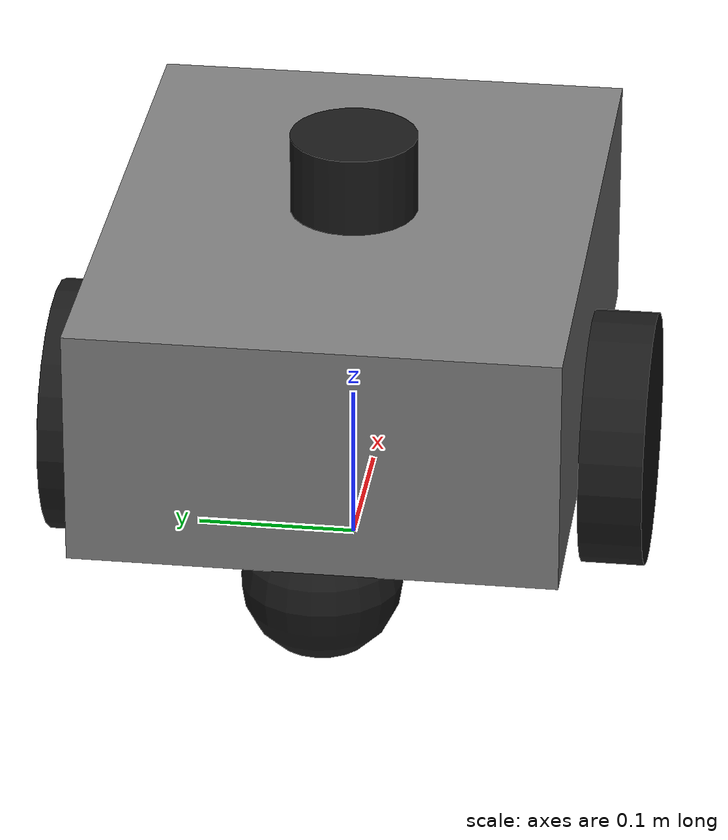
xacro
<?xml version="1.0"?>
<robot name="mybot" xmlns:xacro="http://www.ros.org/wiki/xacro">

  <xacro:property name="base_length"      value="0.4"/>
  <xacro:property name="base_width"       value="0.3"/>
  <xacro:property name="base_height"      value="0.15"/>

  <xacro:property name="wheel_radius"     value="0.08"/>
  <xacro:property name="wheel_width"      value="0.04"/>
  <xacro:property name="wheel_separation" value="0.34"/>

  <!-- axle at base bottom face -->
  <xacro:property name="wheel_offset_z"   value="${-base_height/2}"/>

  <!-- caster: same radius as wheel so contact plane is identical -->
  <xacro:property name="caster_radius"    value="0.05"/>
  <xacro:property name="caster_joint_z"  value="${caster_radius - wheel_radius - base_height/2}"/>

  <!-- ============================================================ MATERIALS -->
  <material name="grey"> <color rgba="0.5 0.5 0.5 1"/> </material>
  <material name="black"><color rgba="0.1 0.1 0.1 1"/> </material>

  <!-- ============================================================ BASE -->
  <link name="base_footprint"/>

  <link name="base_link">
    <visual>
      <geometry><box size="${base_length} ${base_width} ${base_height}"/></geometry>
      <material name="grey"/>
    </visual>
    <collision>
      <geometry><box size="${base_length} ${base_width} ${base_height}"/></geometry>
    </collision>
    <inertial>
      <mass value="5.0"/>
      <inertia ixx="0.0578" ixy="0" ixz="0"
               iyy="0.0911" iyz="0"
               izz="0.1156"/>
    </inertial>
  </link>

  <joint name="base_joint" type="fixed">
    <parent link="base_footprint"/>
    <child  link="base_link"/>
    <origin xyz="0 0 ${wheel_radius - wheel_offset_z}" rpy="0 0 0"/>
  </joint>

  <!-- ============================================================ WHEELS -->
  <xacro:macro name="wheel" params="prefix reflect">
    <link name="${prefix}_wheel_link">
      <visual>
        <geometry><cylinder radius="${wheel_radius}" length="${wheel_width}"/></geometry>
        <origin xyz="0 0 0" rpy="1.5708 0 0"/>
        <material name="black"/>
      </visual>
      <collision>
        <geometry><cylinder radius="${wheel_radius}" length="${wheel_width}"/></geometry>
        <origin xyz="0 0 0" rpy="1.5708 0 0"/>
      </collision>
      <inertial>
        <mass value="0.5"/>
        <inertia ixx="0.000867" ixy="0" ixz="0"
                 iyy="0.00016" iyz="0"
                 izz="0.000867"/>
      </inertial>
    </link>

    <joint name="${prefix}_wheel_joint" type="continuous">
      <parent link="base_link"/>
      <child  link="${prefix}_wheel_link"/>
      <origin xyz="0 ${reflect * wheel_separation/2} ${wheel_offset_z}" rpy="0 0 0"/>
      <axis xyz="0 1 0"/>
      <dynamics damping="0.01" friction="0.0"/>
      <limit effort="2.0" velocity="10.0"/>
    </joint>
  </xacro:macro>

  <xacro:wheel prefix="left"  reflect="1"/>
  <xacro:wheel prefix="right" reflect="-1"/>

  <!-- ============================================================ CASTERS -->
  <xacro:macro name="caster" params="prefix x_offset y_offset">
    <link name="caster_${prefix}_link">
      <visual>
        <geometry><sphere radius="${caster_radius}"/></geometry>
        <material name="black"/>
      </visual>
      <collision>
        <geometry><sphere radius="${caster_radius}"/></geometry>
      </collision>
      <inertial>
        <mass value="0.1"/>
        <inertia ixx="0.0001" ixy="0" ixz="0"
                 iyy="0.0001" iyz="0"
                 izz="0.0001"/>
      </inertial>
    </link>

    <joint name="caster_${prefix}_joint" type="fixed">
      <parent link="base_link"/>
      <child  link="caster_${prefix}_link"/>
      <origin xyz="${x_offset} ${y_offset} ${caster_joint_z}" rpy="0 0 0"/>
    </joint>

    <gazebo reference="caster_${prefix}_link">
      <material>Gazebo/Black</material>
      <mu1>0.0</mu1>
      <mu2>0.0</mu2>
      <kp>100000.0</kp>
      <kd>10.0</kd>
      <minDepth>0.001</minDepth>
      <maxVel>0.1</maxVel>
    </gazebo>
  </xacro:macro>

  <xacro:caster prefix="front" x_offset="${ base_length/2 - 0.05}" y_offset="0.0"/>
  <xacro:caster prefix="back"  x_offset="${-base_length/2 + 0.05}" y_offset="0.0"/>

  <!-- ============================================================ ROS2_CONTROL -->
  <ros2_control name="GazeboSystem" type="system">
    <hardware>
      <plugin>gazebo_ros2_control/GazeboSystem</plugin>
    </hardware>
    <joint name="left_wheel_joint">
      <command_interface name="velocity">
        <param name="min">-10</param>
        <param name="max">10</param>
      </command_interface>
      <state_interface name="position"/>
      <state_interface name="velocity"/>
    </joint>
    <joint name="right_wheel_joint">
      <command_interface name="velocity">
        <param name="min">-10</param>
        <param name="max">10</param>
      </command_interface>
      <state_interface name="position"/>
      <state_interface name="velocity"/>
    </joint>
  </ros2_control>

  <!-- ============================================================ GAZEBO PLUGINS -->
  <gazebo>
    <plugin name="gazebo_ros2_control" filename="libgazebo_ros2_control.so">
      <robot_param>robot_description</robot_param>
      <robot_param_node>robot_state_publisher</robot_param_node>
      <parameters>$(find mybot_gazebo)/config/controllers.yaml</parameters>
      <ros>
        <remapping>diff_drive_controller/odom:=/odom</remapping>
        <remapping>diff_drive_controller/cmd_vel_unstamped:=/cmd_vel</remapping>
      </ros>
    </plugin>
  </gazebo>

  <!-- ============================================================ GAZEBO LINK PROPS -->
  <gazebo reference="base_link">
    <material>Gazebo/Grey</material>
    <self_collide>false</self_collide>
  </gazebo>

  <gazebo reference="left_wheel_link">
    <material>Gazebo/Black</material>
    <mu1>1.0</mu1>
    <mu2>1.0</mu2>
    <kp>1000000.0</kp>
    <kd>10.0</kd>
    <minDepth>0.001</minDepth>
    <maxVel>0.1</maxVel>
  </gazebo>

  <gazebo reference="right_wheel_link">
    <material>Gazebo/Black</material>
    <mu1>1.0</mu1>
    <mu2>1.0</mu2>
    <kp>1000000.0</kp>
    <kd>10.0</kd>
    <minDepth>0.001</minDepth>
    <maxVel>0.1</maxVel>
  </gazebo>

  <!-- ============================================================ LIDAR -->
  <xacro:property name="lidar_radius" value="0.04"/>
  <xacro:property name="lidar_height" value="0.05"/>

  <link name="laser_link">
    <visual>
      <geometry>
        <cylinder radius="${lidar_radius}" length="${lidar_height}"/>
      </geometry>
      <material name="black"/>
    </visual>
    <inertial>
      <mass value="0.1"/>
      <origin xyz="0 0 0"/>
      <inertia
        ixx="0.0001" ixy="0.0" ixz="0.0"
        iyy="0.0001" iyz="0.0"
        izz="0.0001"/>
    </inertial>
  </link>
  <joint name="laser_joint" type="fixed">
    <parent link="base_link"/>
    <child link="laser_link"/>
    <origin xyz="0 0 ${base_height/2 + lidar_height/2}" rpy="0 0 0"/>
  </joint>

  <gazebo reference="laser_link">
    <self_collide>false</self_collide>
    <sensor name="lidar_sensor" type="ray">
      <always_on>true</always_on>
      <visualize>true</visualize>
      <update_rate>30</update_rate>
      <ray>
        <scan>
          <horizontal>
            <samples>360</samples>
            <resolution>1</resolution>
            <min_angle>-3.14159</min_angle>
            <max_angle>3.14159</max_angle>
          </horizontal>
        </scan>
        <range>
          <min>0.12</min>
          <max>10.0</max>
          <resolution>0.01</resolution>
        </range>
        <noise>
          <type>gaussian</type>
          <mean>0.0</mean>
          <stddev>0.01</stddev>
        </noise>
      </ray>
      <plugin name="laser_plugin" filename="libgazebo_ros_ray_sensor.so">
        <ros>
          <remapping>~/out:=/scan</remapping>
        </ros>
        <frame_name>laser_link</frame_name>
        <output_type>sensor_msgs/LaserScan</output_type>
      </plugin>
    </sensor>
  </gazebo>

  <!-- ============================================================ IMU -->
  <xacro:property name="imu_size" value="0.02"/>

  <link name="imu_link">
    <visual>
      <geometry><box size="${imu_size} ${imu_size} ${imu_size}"/></geometry>
      <material name="black"/>
    </visual>
    <inertial>
      <mass value="0.001"/>
      <inertia ixx="1e-7" ixy="0" ixz="0"
               iyy="1e-7" iyz="0"
               izz="1e-7"/>
    </inertial>
  </link>

  <joint name="imu_joint" type="fixed">
    <parent link="base_link"/>
    <child  link="imu_link"/>
    <origin xyz="0 0 0" rpy="0 0 0"/>
  </joint>

  <gazebo reference="imu_link">
    <material>Gazebo/Black</material>
    <sensor name="imu_sensor" type="imu">
      <always_on>true</always_on>
      <update_rate>100</update_rate>
      <visualize>false</visualize>
      <imu>
        <angular_velocity>
          <x><noise type="gaussian"><mean>0.0</mean><stddev>0.0002</stddev></noise></x>
          <y><noise type="gaussian"><mean>0.0</mean><stddev>0.0002</stddev></noise></y>
          <z><noise type="gaussian"><mean>0.0</mean><stddev>0.0002</stddev></noise></z>
        </angular_velocity>
        <linear_acceleration>
          <x><noise type="gaussian"><mean>0.0</mean><stddev>0.017</stddev></noise></x>
          <y><noise type="gaussian"><mean>0.0</mean><stddev>0.017</stddev></noise></y>
          <z><noise type="gaussian"><mean>0.0</mean><stddev>0.017</stddev></noise></z>
        </linear_acceleration>
      </imu>
      <plugin name="imu_plugin" filename="libgazebo_ros_imu_sensor.so">
        <ros>
          <namespace>/</namespace>
          <remapping>~/out:=imu</remapping>
        </ros>
        <frame_name>imu_link</frame_name>
        <initial_orientation_as_reference>false</initial_orientation_as_reference>
      </plugin>
    </sensor>
  </gazebo>

</robot>
